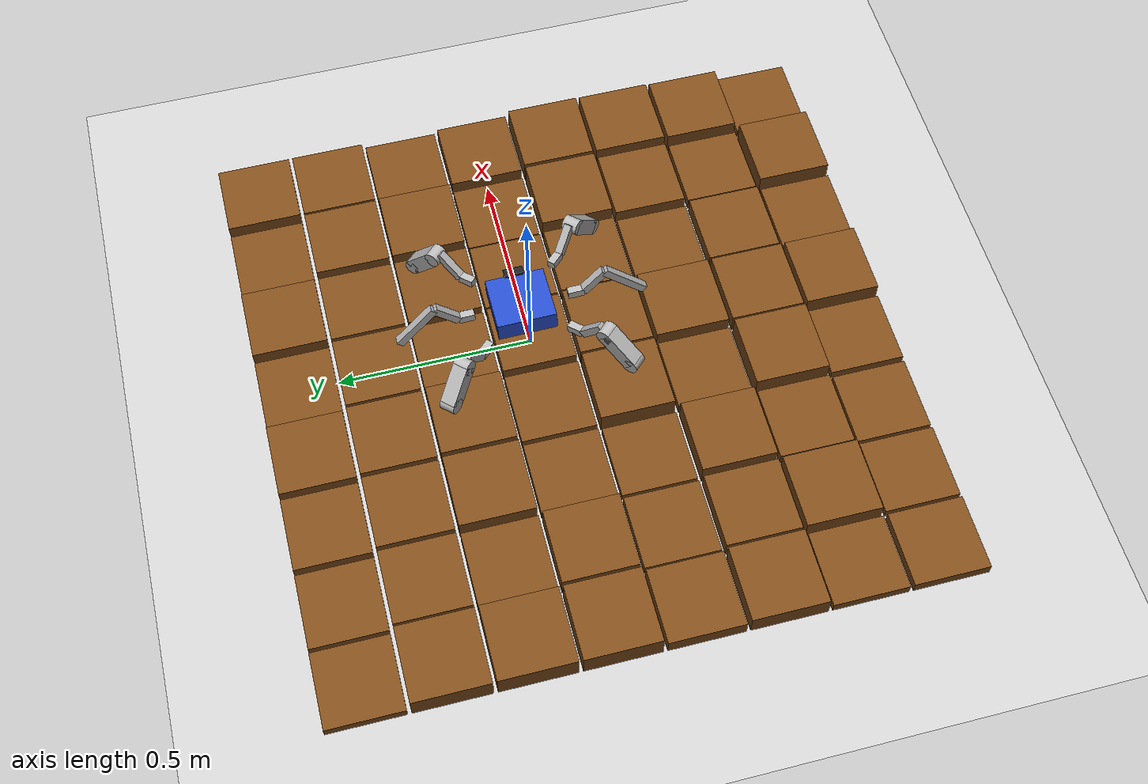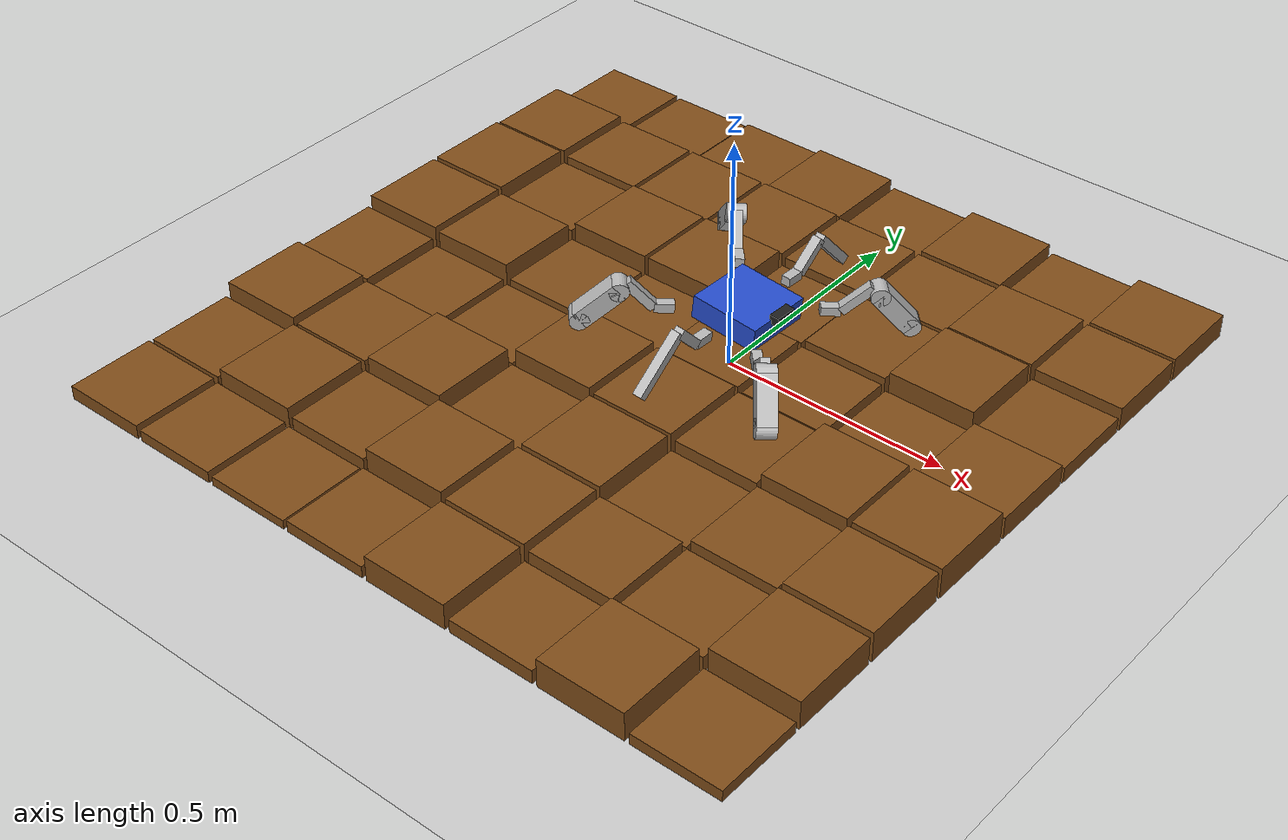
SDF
<sdf version="1.7">
 <world name="default">
  <light name="sun" type="directional">
   <pose>0 0 10 0 -0 0</pose>
   <diffuse>0.8 0.8 0.8 1</diffuse>
   <specular>0.2 0.2 0.2 1</specular>
   <attenuation>
    <range>1000</range>
    <constant>0.9</constant>
    <linear>0.01</linear>
    <quadratic>0.001</quadratic>
   </attenuation>
   <direction>-0.5 0.1 -0.9</direction>
   <spot><inner_angle>0</inner_angle><outer_angle>0</outer_angle><falloff>0</falloff></spot>
  </light>
  <model name="ground_plane">
   <static>1</static>
   <link name="link">
    <collision name="collision">
     <geometry><plane><normal>0 0 1</normal><size>100 100</size></plane></geometry>
     <surface>
      <contact><collide_bitmask>65535</collide_bitmask></contact>
      <friction><ode><mu>100</mu><mu2>50</mu2></ode></friction>
     </surface>
    </collision>
    <visual name="visual">
     <cast_shadows>0</cast_shadows>
     <geometry><plane><normal>0 0 1</normal><size>100 100</size></plane></geometry>
     <material>
      <script><uri>file://media/materials/scripts/gazebo.material</uri><name>Gazebo/Grey</name></script>
     </material>
    </visual>
   </link>
  </model>
  <gravity>0 0 -9.8</gravity>
  <magnetic_field>6e-06 2.3e-05 -4.2e-05</magnetic_field>
  <atmosphere type="adiabatic"/>
  <physics type="ode">
   <max_step_size>0.001</max_step_size>
   <real_time_factor>1</real_time_factor>
   <real_time_update_rate>1000</real_time_update_rate>
  </physics>
  <scene><ambient>0.4 0.4 0.4 1</ambient><background>0.7 0.7 0.7 1</background><shadows>1</shadows></scene>
  <audio><device>default</device></audio>
  <spherical_coordinates>
   <surface_model>EARTH_WGS84</surface_model>
   <latitude_deg>0</latitude_deg>
   <longitude_deg>0</longitude_deg>
   <elevation>0</elevation>
   <heading_deg>0</heading_deg>
  </spherical_coordinates>
  <model name="spider_bot">
   <link name="base_link">
    <inertial>
     <mass>1</mass>
     <inertia><ixx>0.02</ixx><ixy>0</ixy><ixz>0</ixz><iyy>0.02</iyy><iyz>0</iyz><izz>0.04</izz></inertia>
    </inertial>
    <collision name="base_link_collision">
     <geometry><box><size>0.15 0.15 0.05</size></box></geometry>
     <surface><friction><ode><mu>0.2</mu><mu2>0.2</mu2></ode></friction></surface>
    </collision>
    <visual name="base_link_visual">
     <geometry><box><size>0.15 0.15 0.05</size></box></geometry>
     <material>
      <script><name>Gazebo/Blue</name><uri>file://media/materials/scripts/gazebo.material</uri></script>
     </material>
    </visual>
    <visual name="base_link_fixed_joint_lump__camera_link_visual_1">
     <pose>0.08 0 0.025 0 -0 0</pose>
     <geometry><box><size>0.02 0.05 0.02</size></box></geometry>
     <material>
      <script><name>Gazebo/Black</name><uri>file://media/materials/scripts/gazebo.material</uri></script>
     </material>
    </visual>
    <sensor name="depth_camera" type="depth">
     <update_rate>30</update_rate>
     <camera name="head">
      <horizontal_fov>1.39626</horizontal_fov>
      <image><width>640</width><height>480</height><format>R8G8B8</format></image>
      <clip><near>0.05</near><far>3</far></clip>
     </camera>
     <plugin name="camera_controller" filename="libgazebo_ros_camera.so">
      <ros>
       <namespace>/</namespace>
       <remapping>custom_camera/image_raw:=camera/image_raw</remapping>
       <remapping>custom_camera/depth/image_raw:=camera/depth/image_raw</remapping>
      </ros>
      <camera_name>camera</camera_name>
      <frame_name>camera_link</frame_name>
     </plugin>
     <pose>0.08 0 0.025 0 -0 0</pose>
    </sensor>
   </link>
   <joint name="joint1" type="revolute">
    <pose relative_to="base_link">0.1 0.1 0 0 -0 0.785</pose>
    <parent>base_link</parent>
    <child>l1_c</child>
    <axis>
     <xyz>0 0 1</xyz>
     <limit><lower>-1.57</lower><upper>1.57</upper><effort>10</effort><velocity>1</velocity></limit>
     <dynamics>
      <damping>1.5</damping>
      <friction>0.1</friction>
      <spring_reference>0</spring_reference>
      <spring_stiffness>0</spring_stiffness>
     </dynamics>
    </axis>
   </joint>
   <link name="l1_c">
    <pose relative_to="joint1">0 0 0 0 -0 0</pose>
    <inertial>
     <mass>0.1</mass>
     <inertia><ixx>0.01</ixx><ixy>0</ixy><ixz>0</ixz><iyy>0.01</iyy><iyz>0</iyz><izz>0.01</izz></inertia>
    </inertial>
    <collision name="l1_c_collision">
     <pose>0.02 0 0 0 -0 0</pose>
     <geometry><box><size>0.04 0.02 0.02</size></box></geometry>
    </collision>
    <visual name="l1_c_visual">
     <pose>0.02 0 0 0 -0 0</pose>
     <geometry><box><size>0.04 0.02 0.02</size></box></geometry>
    </visual>
   </link>
   <joint name="joint2" type="revolute">
    <pose relative_to="l1_c">0.04 0 0 0 -0.785 0</pose>
    <parent>l1_c</parent>
    <child>l1_f</child>
    <axis>
     <xyz>0 -1 0</xyz>
     <limit><lower>-3.14</lower><upper>3.14</upper><effort>10</effort><velocity>1</velocity></limit>
     <dynamics>
      <damping>1.5</damping>
      <friction>0.1</friction>
      <spring_reference>0</spring_reference>
      <spring_stiffness>0</spring_stiffness>
     </dynamics>
    </axis>
   </joint>
   <link name="l1_f">
    <pose relative_to="joint2">0 0 0 0 -0 0</pose>
    <inertial>
     <mass>0.1</mass>
     <inertia><ixx>0.01</ixx><ixy>0</ixy><ixz>0</ixz><iyy>0.01</iyy><iyz>0</iyz><izz>0.01</izz></inertia>
    </inertial>
    <collision name="l1_f_collision">
     <pose>0.04 0 0 0 -0 0</pose>
     <geometry><box><size>0.08 0.02 0.02</size></box></geometry>
    </collision>
    <visual name="l1_f_visual">
     <pose>0.04 0 0 0 -0 0</pose>
     <geometry><box><size>0.08 0.02 0.02</size></box></geometry>
    </visual>
   </link>
   <joint name="joint3" type="revolute">
    <pose relative_to="l1_f">0.08 0 0 0 1.57 0</pose>
    <parent>l1_f</parent>
    <child>l1_t</child>
    <axis>
     <xyz>0 -1 0</xyz>
     <limit><lower>-3.14</lower><upper>3.14</upper><effort>10</effort><velocity>1</velocity></limit>
     <dynamics>
      <damping>1.5</damping>
      <friction>0.1</friction>
      <spring_reference>0</spring_reference>
      <spring_stiffness>0</spring_stiffness>
     </dynamics>
    </axis>
   </joint>
   <link name="l1_t">
    <pose relative_to="joint3">0 0 0 0 -0 0</pose>
    <inertial>
     <mass>0.2</mass>
     <inertia><ixx>0.001</ixx><ixy>0</ixy><ixz>0</ixz><iyy>0.001</iyy><iyz>0</iyz><izz>0.001</izz></inertia>
    </inertial>
    <collision name="l1_t_collision">
     <pose>0.07 0 0 0 -0 0</pose>
     <geometry><box><size>0.14 0.04 0.04</size></box></geometry>
     <surface>
      <contact><ode><kp>10000</kp><kd>10</kd></ode></contact>
      <friction><ode><mu>2</mu><mu2>2</mu2></ode></friction>
     </surface>
    </collision>
    <visual name="l1_t_visual">
     <pose>0.07 0 0 0 -0 0</pose>
     <geometry><box><size>0.1 0.04 0.04</size></box></geometry>
    </visual>
    <visual name="l1_t_visual_1">
     <pose>0.02 0 0 1.5708 -0 0</pose>
     <geometry><cylinder><length>0.04</length><radius>0.02</radius></cylinder></geometry>
    </visual>
    <visual name="l1_t_visual_2">
     <pose>0.12 0 0 1.5708 -0 0</pose>
     <geometry><cylinder><length>0.04</length><radius>0.02</radius></cylinder></geometry>
    </visual>
   </link>
   <joint name="joint10" type="revolute">
    <pose relative_to="base_link">-0.1 -0.1 0 0 0 -2.355</pose>
    <parent>base_link</parent>
    <child>l4_c</child>
    <axis>
     <xyz>0 0 1</xyz>
     <limit><lower>-1.57</lower><upper>1.57</upper><effort>10</effort><velocity>1</velocity></limit>
     <dynamics>
      <damping>1.5</damping>
      <friction>0.1</friction>
      <spring_reference>0</spring_reference>
      <spring_stiffness>0</spring_stiffness>
     </dynamics>
    </axis>
   </joint>
   <link name="l4_c">
    <pose relative_to="joint10">0 0 0 0 -0 0</pose>
    <inertial>
     <mass>0.1</mass>
     <inertia><ixx>0.01</ixx><ixy>0</ixy><ixz>0</ixz><iyy>0.01</iyy><iyz>0</iyz><izz>0.01</izz></inertia>
    </inertial>
    <collision name="l4_c_collision">
     <pose>0.02 0 0 0 -0 0</pose>
     <geometry><box><size>0.04 0.02 0.02</size></box></geometry>
    </collision>
    <visual name="l4_c_visual">
     <pose>0.02 0 0 0 -0 0</pose>
     <geometry><box><size>0.04 0.02 0.02</size></box></geometry>
    </visual>
   </link>
   <joint name="joint11" type="revolute">
    <pose relative_to="l4_c">0.04 0 0 0 -0.785 0</pose>
    <parent>l4_c</parent>
    <child>l4_f</child>
    <axis>
     <xyz>0 -1 0</xyz>
     <limit><lower>-3.14</lower><upper>3.14</upper><effort>10</effort><velocity>1</velocity></limit>
     <dynamics>
      <damping>1.5</damping>
      <friction>0.1</friction>
      <spring_reference>0</spring_reference>
      <spring_stiffness>0</spring_stiffness>
     </dynamics>
    </axis>
   </joint>
   <link name="l4_f">
    <pose relative_to="joint11">0 0 0 0 -0 0</pose>
    <inertial>
     <mass>0.1</mass>
     <inertia><ixx>0.01</ixx><ixy>0</ixy><ixz>0</ixz><iyy>0.01</iyy><iyz>0</iyz><izz>0.01</izz></inertia>
    </inertial>
    <collision name="l4_f_collision">
     <pose>0.04 0 0 0 -0 0</pose>
     <geometry><box><size>0.08 0.02 0.02</size></box></geometry>
    </collision>
    <visual name="l4_f_visual">
     <pose>0.04 0 0 0 -0 0</pose>
     <geometry><box><size>0.08 0.02 0.02</size></box></geometry>
    </visual>
   </link>
   <joint name="joint12" type="revolute">
    <pose relative_to="l4_f">0.08 0 0 0 1.57 0</pose>
    <parent>l4_f</parent>
    <child>l4_t</child>
    <axis>
     <xyz>0 -1 0</xyz>
     <limit><lower>-3.14</lower><upper>3.14</upper><effort>10</effort><velocity>1</velocity></limit>
     <dynamics>
      <damping>1.5</damping>
      <friction>0.1</friction>
      <spring_reference>0</spring_reference>
      <spring_stiffness>0</spring_stiffness>
     </dynamics>
    </axis>
   </joint>
   <link name="l4_t">
    <pose relative_to="joint12">0 0 0 0 -0 0</pose>
    <inertial>
     <mass>0.2</mass>
     <inertia><ixx>0.001</ixx><ixy>0</ixy><ixz>0</ixz><iyy>0.001</iyy><iyz>0</iyz><izz>0.001</izz></inertia>
    </inertial>
    <collision name="l4_t_collision">
     <pose>0.07 0 0 0 -0 0</pose>
     <geometry><box><size>0.14 0.04 0.04</size></box></geometry>
     <surface>
      <contact><ode><kp>10000</kp><kd>10</kd></ode></contact>
      <friction><ode><mu>2</mu><mu2>2</mu2></ode></friction>
     </surface>
    </collision>
    <visual name="l4_t_visual">
     <pose>0.07 0 0 0 -0 0</pose>
     <geometry><box><size>0.1 0.04 0.04</size></box></geometry>
    </visual>
    <visual name="l4_t_visual_1">
     <pose>0.02 0 0 1.5708 -0 0</pose>
     <geometry><cylinder><length>0.04</length><radius>0.02</radius></cylinder></geometry>
    </visual>
    <visual name="l4_t_visual_2">
     <pose>0.12 0 0 1.5708 -0 0</pose>
     <geometry><cylinder><length>0.04</length><radius>0.02</radius></cylinder></geometry>
    </visual>
   </link>
   <joint name="joint13" type="revolute">
    <pose relative_to="base_link">0 -0.12 0 0 0 -1.57</pose>
    <parent>base_link</parent>
    <child>l5_c</child>
    <axis>
     <xyz>0 0 1</xyz>
     <limit><lower>-1.57</lower><upper>1.57</upper><effort>10</effort><velocity>1</velocity></limit>
     <dynamics>
      <damping>1.5</damping>
      <friction>0.1</friction>
      <spring_reference>0</spring_reference>
      <spring_stiffness>0</spring_stiffness>
     </dynamics>
    </axis>
   </joint>
   <link name="l5_c">
    <pose relative_to="joint13">0 0 0 0 -0 0</pose>
    <inertial>
     <mass>0.1</mass>
     <inertia><ixx>0.01</ixx><ixy>0</ixy><ixz>0</ixz><iyy>0.01</iyy><iyz>0</iyz><izz>0.01</izz></inertia>
    </inertial>
    <collision name="l5_c_collision">
     <pose>0.02 0 0 0 -0 0</pose>
     <geometry><box><size>0.04 0.02 0.02</size></box></geometry>
    </collision>
    <visual name="l5_c_visual">
     <pose>0.02 0 0 0 -0 0</pose>
     <geometry><box><size>0.04 0.02 0.02</size></box></geometry>
    </visual>
   </link>
   <joint name="joint14" type="revolute">
    <pose relative_to="l5_c">0.04 0 0 0 -0.785 0</pose>
    <parent>l5_c</parent>
    <child>l5_f</child>
    <axis>
     <xyz>0 -1 0</xyz>
     <limit><lower>-3.14</lower><upper>3.14</upper><effort>10</effort><velocity>1</velocity></limit>
     <dynamics>
      <damping>1.5</damping>
      <friction>0.1</friction>
      <spring_reference>0</spring_reference>
      <spring_stiffness>0</spring_stiffness>
     </dynamics>
    </axis>
   </joint>
   <link name="l5_f">
    <pose relative_to="joint14">0 0 0 0 -0 0</pose>
    <inertial>
     <mass>0.1</mass>
     <inertia><ixx>0.01</ixx><ixy>0</ixy><ixz>0</ixz><iyy>0.01</iyy><iyz>0</iyz><izz>0.01</izz></inertia>
    </inertial>
    <collision name="l5_f_collision">
     <pose>0.04 0 0 0 -0 0</pose>
     <geometry><box><size>0.08 0.02 0.02</size></box></geometry>
    </collision>
    <visual name="l5_f_visual">
     <pose>0.04 0 0 0 -0 0</pose>
     <geometry><box><size>0.08 0.02 0.02</size></box></geometry>
    </visual>
   </link>
   <joint name="joint15" type="revolute">
    <pose relative_to="l5_f">0.08 0 0 0 1.57 0</pose>
    <parent>l5_f</parent>
    <child>l5_t</child>
    <axis>
     <xyz>0 -1 0</xyz>
     <limit><lower>-3.14</lower><upper>3.14</upper><effort>10</effort><velocity>1</velocity></limit>
     <dynamics>
      <damping>1.5</damping>
      <friction>0.1</friction>
      <spring_reference>0</spring_reference>
      <spring_stiffness>0</spring_stiffness>
     </dynamics>
    </axis>
   </joint>
   <link name="l5_t">
    <pose relative_to="joint15">0 0 0 0 -0 0</pose>
    <inertial>
     <mass>0.1</mass>
     <inertia><ixx>0.01</ixx><ixy>0</ixy><ixz>0</ixz><iyy>0.01</iyy><iyz>0</iyz><izz>0.01</izz></inertia>
    </inertial>
    <collision name="l5_t_collision">
     <pose>0.07 0 0 0 -0 0</pose>
     <geometry><box><size>0.14 0.02 0.02</size></box></geometry>
     <surface>
      <contact><ode><kp>10000</kp><kd>10</kd></ode></contact>
      <friction><ode><mu>2</mu><mu2>2</mu2></ode></friction>
     </surface>
    </collision>
    <visual name="l5_t_visual">
     <pose>0.07 0 0 0 -0 0</pose>
     <geometry><box><size>0.14 0.02 0.02</size></box></geometry>
    </visual>
   </link>
   <joint name="joint16" type="revolute">
    <pose relative_to="base_link">0.1 -0.1 0 0 0 -0.785</pose>
    <parent>base_link</parent>
    <child>l6_c</child>
    <axis>
     <xyz>0 0 1</xyz>
     <limit><lower>-1.57</lower><upper>1.57</upper><effort>10</effort><velocity>1</velocity></limit>
     <dynamics>
      <damping>1.5</damping>
      <friction>0.1</friction>
      <spring_reference>0</spring_reference>
      <spring_stiffness>0</spring_stiffness>
     </dynamics>
    </axis>
   </joint>
   <link name="l6_c">
    <pose relative_to="joint16">0 0 0 0 -0 0</pose>
    <inertial>
     <mass>0.1</mass>
     <inertia><ixx>0.01</ixx><ixy>0</ixy><ixz>0</ixz><iyy>0.01</iyy><iyz>0</iyz><izz>0.01</izz></inertia>
    </inertial>
    <collision name="l6_c_collision">
     <pose>0.02 0 0 0 -0 0</pose>
     <geometry><box><size>0.04 0.02 0.02</size></box></geometry>
    </collision>
    <visual name="l6_c_visual">
     <pose>0.02 0 0 0 -0 0</pose>
     <geometry><box><size>0.04 0.02 0.02</size></box></geometry>
    </visual>
   </link>
   <joint name="joint17" type="revolute">
    <pose relative_to="l6_c">0.04 0 0 0 -0.785 0</pose>
    <parent>l6_c</parent>
    <child>l6_f</child>
    <axis>
     <xyz>0 -1 0</xyz>
     <limit><lower>-3.14</lower><upper>3.14</upper><effort>10</effort><velocity>1</velocity></limit>
     <dynamics>
      <damping>1.5</damping>
      <friction>0.1</friction>
      <spring_reference>0</spring_reference>
      <spring_stiffness>0</spring_stiffness>
     </dynamics>
    </axis>
   </joint>
   <link name="l6_f">
    <pose relative_to="joint17">0 0 0 0 -0 0</pose>
    <inertial>
     <mass>0.1</mass>
     <inertia><ixx>0.01</ixx><ixy>0</ixy><ixz>0</ixz><iyy>0.01</iyy><iyz>0</iyz><izz>0.01</izz></inertia>
    </inertial>
    <collision name="l6_f_collision">
     <pose>0.04 0 0 0 -0 0</pose>
     <geometry><box><size>0.08 0.02 0.02</size></box></geometry>
    </collision>
    <visual name="l6_f_visual">
     <pose>0.04 0 0 0 -0 0</pose>
     <geometry><box><size>0.08 0.02 0.02</size></box></geometry>
    </visual>
   </link>
   <joint name="joint18" type="revolute">
    <pose relative_to="l6_f">0.08 0 0 0 1.57 0</pose>
    <parent>l6_f</parent>
    <child>l6_t</child>
    <axis>
     <xyz>0 -1 0</xyz>
     <limit><lower>-3.14</lower><upper>3.14</upper><effort>10</effort><velocity>1</velocity></limit>
     <dynamics>
      <damping>1.5</damping>
      <friction>0.1</friction>
      <spring_reference>0</spring_reference>
      <spring_stiffness>0</spring_stiffness>
     </dynamics>
    </axis>
   </joint>
   <link name="l6_t">
    <pose relative_to="joint18">0 0 0 0 -0 0</pose>
    <inertial>
     <mass>0.2</mass>
     <inertia><ixx>0.001</ixx><ixy>0</ixy><ixz>0</ixz><iyy>0.001</iyy><iyz>0</iyz><izz>0.001</izz></inertia>
    </inertial>
    <collision name="l6_t_collision">
     <pose>0.07 0 0 0 -0 0</pose>
     <geometry><box><size>0.14 0.04 0.04</size></box></geometry>
     <surface>
      <contact><ode><kp>10000</kp><kd>10</kd></ode></contact>
      <friction><ode><mu>2</mu><mu2>2</mu2></ode></friction>
     </surface>
    </collision>
    <visual name="l6_t_visual">
     <pose>0.07 0 0 0 -0 0</pose>
     <geometry><box><size>0.1 0.04 0.04</size></box></geometry>
    </visual>
    <visual name="l6_t_visual_1">
     <pose>0.02 0 0 1.5708 -0 0</pose>
     <geometry><cylinder><length>0.04</length><radius>0.02</radius></cylinder></geometry>
    </visual>
    <visual name="l6_t_visual_2">
     <pose>0.12 0 0 1.5708 -0 0</pose>
     <geometry><cylinder><length>0.04</length><radius>0.02</radius></cylinder></geometry>
    </visual>
   </link>
   <joint name="joint4" type="revolute">
    <pose relative_to="base_link">0 0.12 0 0 -0 1.57</pose>
    <parent>base_link</parent>
    <child>l2_c</child>
    <axis>
     <xyz>0 0 1</xyz>
     <limit><lower>-1.57</lower><upper>1.57</upper><effort>10</effort><velocity>1</velocity></limit>
     <dynamics>
      <damping>1.5</damping>
      <friction>0.1</friction>
      <spring_reference>0</spring_reference>
      <spring_stiffness>0</spring_stiffness>
     </dynamics>
    </axis>
   </joint>
   <link name="l2_c">
    <pose relative_to="joint4">0 0 0 0 -0 0</pose>
    <inertial>
     <mass>0.1</mass>
     <inertia><ixx>0.01</ixx><ixy>0</ixy><ixz>0</ixz><iyy>0.01</iyy><iyz>0</iyz><izz>0.01</izz></inertia>
    </inertial>
    <collision name="l2_c_collision">
     <pose>0.02 0 0 0 -0 0</pose>
     <geometry><box><size>0.04 0.02 0.02</size></box></geometry>
    </collision>
    <visual name="l2_c_visual">
     <pose>0.02 0 0 0 -0 0</pose>
     <geometry><box><size>0.04 0.02 0.02</size></box></geometry>
    </visual>
   </link>
   <joint name="joint5" type="revolute">
    <pose relative_to="l2_c">0.04 0 0 0 -0.785 0</pose>
    <parent>l2_c</parent>
    <child>l2_f</child>
    <axis>
     <xyz>0 -1 0</xyz>
     <limit><lower>-3.14</lower><upper>3.14</upper><effort>10</effort><velocity>1</velocity></limit>
     <dynamics>
      <damping>1.5</damping>
      <friction>0.1</friction>
      <spring_reference>0</spring_reference>
      <spring_stiffness>0</spring_stiffness>
     </dynamics>
    </axis>
   </joint>
   <link name="l2_f">
    <pose relative_to="joint5">0 0 0 0 -0 0</pose>
    <inertial>
     <mass>0.1</mass>
     <inertia><ixx>0.01</ixx><ixy>0</ixy><ixz>0</ixz><iyy>0.01</iyy><iyz>0</iyz><izz>0.01</izz></inertia>
    </inertial>
    <collision name="l2_f_collision">
     <pose>0.04 0 0 0 -0 0</pose>
     <geometry><box><size>0.08 0.02 0.02</size></box></geometry>
    </collision>
    <visual name="l2_f_visual">
     <pose>0.04 0 0 0 -0 0</pose>
     <geometry><box><size>0.08 0.02 0.02</size></box></geometry>
    </visual>
   </link>
   <joint name="joint6" type="revolute">
    <pose relative_to="l2_f">0.08 0 0 0 1.57 0</pose>
    <parent>l2_f</parent>
    <child>l2_t</child>
    <axis>
     <xyz>0 -1 0</xyz>
     <limit><lower>-3.14</lower><upper>3.14</upper><effort>10</effort><velocity>1</velocity></limit>
     <dynamics>
      <damping>1.5</damping>
      <friction>0.1</friction>
      <spring_reference>0</spring_reference>
      <spring_stiffness>0</spring_stiffness>
     </dynamics>
    </axis>
   </joint>
   <link name="l2_t">
    <pose relative_to="joint6">0 0 0 0 -0 0</pose>
    <inertial>
     <mass>0.1</mass>
     <inertia><ixx>0.01</ixx><ixy>0</ixy><ixz>0</ixz><iyy>0.01</iyy><iyz>0</iyz><izz>0.01</izz></inertia>
    </inertial>
    <collision name="l2_t_collision">
     <pose>0.07 0 0 0 -0 0</pose>
     <geometry><box><size>0.14 0.02 0.02</size></box></geometry>
     <surface>
      <contact><ode><kp>10000</kp><kd>10</kd></ode></contact>
      <friction><ode><mu>2</mu><mu2>2</mu2></ode></friction>
     </surface>
    </collision>
    <visual name="l2_t_visual">
     <pose>0.07 0 0 0 -0 0</pose>
     <geometry><box><size>0.14 0.02 0.02</size></box></geometry>
    </visual>
   </link>
   <joint name="joint7" type="revolute">
    <pose relative_to="base_link">-0.1 0.1 0 0 -0 2.355</pose>
    <parent>base_link</parent>
    <child>l3_c</child>
    <axis>
     <xyz>0 0 1</xyz>
     <limit><lower>-1.57</lower><upper>1.57</upper><effort>10</effort><velocity>1</velocity></limit>
     <dynamics>
      <damping>1.5</damping>
      <friction>0.1</friction>
      <spring_reference>0</spring_reference>
      <spring_stiffness>0</spring_stiffness>
     </dynamics>
    </axis>
   </joint>
   <link name="l3_c">
    <pose relative_to="joint7">0 0 0 0 -0 0</pose>
    <inertial>
     <mass>0.1</mass>
     <inertia><ixx>0.01</ixx><ixy>0</ixy><ixz>0</ixz><iyy>0.01</iyy><iyz>0</iyz><izz>0.01</izz></inertia>
    </inertial>
    <collision name="l3_c_collision">
     <pose>0.02 0 0 0 -0 0</pose>
     <geometry><box><size>0.04 0.02 0.02</size></box></geometry>
    </collision>
    <visual name="l3_c_visual">
     <pose>0.02 0 0 0 -0 0</pose>
     <geometry><box><size>0.04 0.02 0.02</size></box></geometry>
    </visual>
   </link>
   <joint name="joint8" type="revolute">
    <pose relative_to="l3_c">0.04 0 0 0 -0.785 0</pose>
    <parent>l3_c</parent>
    <child>l3_f</child>
    <axis>
     <xyz>0 -1 0</xyz>
     <limit><lower>-3.14</lower><upper>3.14</upper><effort>10</effort><velocity>1</velocity></limit>
     <dynamics>
      <damping>1.5</damping>
      <friction>0.1</friction>
      <spring_reference>0</spring_reference>
      <spring_stiffness>0</spring_stiffness>
     </dynamics>
    </axis>
   </joint>
   <link name="l3_f">
    <pose relative_to="joint8">0 0 0 0 -0 0</pose>
    <inertial>
     <mass>0.1</mass>
     <inertia><ixx>0.01</ixx><ixy>0</ixy><ixz>0</ixz><iyy>0.01</iyy><iyz>0</iyz><izz>0.01</izz></inertia>
    </inertial>
    <collision name="l3_f_collision">
     <pose>0.04 0 0 0 -0 0</pose>
     <geometry><box><size>0.08 0.02 0.02</size></box></geometry>
    </collision>
    <visual name="l3_f_visual">
     <pose>0.04 0 0 0 -0 0</pose>
     <geometry><box><size>0.08 0.02 0.02</size></box></geometry>
    </visual>
   </link>
   <joint name="joint9" type="revolute">
    <pose relative_to="l3_f">0.08 0 0 0 1.57 0</pose>
    <parent>l3_f</parent>
    <child>l3_t</child>
    <axis>
     <xyz>0 -1 0</xyz>
     <limit><lower>-3.14</lower><upper>3.14</upper><effort>10</effort><velocity>1</velocity></limit>
     <dynamics>
      <damping>1.5</damping>
      <friction>0.1</friction>
      <spring_reference>0</spring_reference>
      <spring_stiffness>0</spring_stiffness>
     </dynamics>
    </axis>
   </joint>
   <link name="l3_t">
    <pose relative_to="joint9">0 0 0 0 -0 0</pose>
    <inertial>
     <mass>0.2</mass>
     <inertia><ixx>0.001</ixx><ixy>0</ixy><ixz>0</ixz><iyy>0.001</iyy><iyz>0</iyz><izz>0.001</izz></inertia>
    </inertial>
    <collision name="l3_t_collision">
     <pose>0.07 0 0 0 -0 0</pose>
     <geometry><box><size>0.14 0.04 0.04</size></box></geometry>
     <surface>
      <contact><ode><kp>10000</kp><kd>10</kd></ode></contact>
      <friction><ode><mu>2</mu><mu2>2</mu2></ode></friction>
     </surface>
    </collision>
    <visual name="l3_t_visual">
     <pose>0.07 0 0 0 -0 0</pose>
     <geometry><box><size>0.1 0.04 0.04</size></box></geometry>
    </visual>
    <visual name="l3_t_visual_1">
     <pose>0.02 0 0 1.5708 -0 0</pose>
     <geometry><cylinder><length>0.04</length><radius>0.02</radius></cylinder></geometry>
    </visual>
    <visual name="l3_t_visual_2">
     <pose>0.12 0 0 1.5708 -0 0</pose>
     <geometry><cylinder><length>0.04</length><radius>0.02</radius></cylinder></geometry>
    </visual>
   </link>
   <static>0</static>
   <plugin name="gazebo_ros2_control" filename="libgazebo_ros2_control.so">
    <parameters>/home/chia/spider_ws/install/spider_bot/share/spider_bot/config/spider_bot_controllers.yaml</parameters>
   </plugin>
   <plugin name="gazebo_ros_p3d" filename="libgazebo_ros_p3d.so">
    <ros><namespace>/</namespace><remapping>odom:=odom</remapping></ros>
    <body_name>base_link</body_name>
    <frame_name>world</frame_name>
    <update_rate>50</update_rate>
   </plugin>
   <pose>0.028439 0.016132 0.138992 -0.030502 0.088918 -0.009445</pose>
  </model>
  <model name="terrain_block_0_0">
   <static>1</static>
   <link name="link">
    <collision name="collision"><geometry><box><size>0.19 0.19 0.030729</size></box></geometry></collision>
    <visual name="visual">
     <geometry><box><size>0.19 0.19 0.030729</size></box></geometry>
     <material><ambient>0.5 0.3 0.1 1</ambient></material>
    </visual>
   </link>
   <pose>-0.8 -0.8 0.015365 0 -0 0</pose>
  </model>
  <model name="terrain_block_0_1">
   <static>1</static>
   <link name="link">
    <collision name="collision"><geometry><box><size>0.19 0.19 0.027995</size></box></geometry></collision>
    <visual name="visual">
     <geometry><box><size>0.19 0.19 0.027995</size></box></geometry>
     <material><ambient>0.5 0.3 0.1 1</ambient></material>
    </visual>
   </link>
   <pose>-0.8 -0.6 0.013998 0 -0 0</pose>
  </model>
  <model name="terrain_block_0_2">
   <static>1</static>
   <link name="link">
    <collision name="collision"><geometry><box><size>0.19 0.19 0.057687</size></box></geometry></collision>
    <visual name="visual">
     <geometry><box><size>0.19 0.19 0.057687</size></box></geometry>
     <material><ambient>0.5 0.3 0.1 1</ambient></material>
    </visual>
   </link>
   <pose>-0.8 -0.4 0.028844 0 -0 0</pose>
  </model>
  <model name="terrain_block_0_3">
   <static>1</static>
   <link name="link">
    <collision name="collision"><geometry><box><size>0.19 0.19 0.043119</size></box></geometry></collision>
    <visual name="visual">
     <geometry><box><size>0.19 0.19 0.043119</size></box></geometry>
     <material><ambient>0.5 0.3 0.1 1</ambient></material>
    </visual>
   </link>
   <pose>-0.8 -0.2 0.021559 0 -0 0</pose>
  </model>
  <model name="terrain_block_0_4">
   <static>1</static>
   <link name="link">
    <collision name="collision"><geometry><box><size>0.19 0.19 0.066355</size></box></geometry></collision>
    <visual name="visual">
     <geometry><box><size>0.19 0.19 0.066355</size></box></geometry>
     <material><ambient>0.5 0.3 0.1 1</ambient></material>
    </visual>
   </link>
   <pose>-0.8 0 0.033177 0 -0 0</pose>
  </model>
  <model name="terrain_block_0_5">
   <static>1</static>
   <link name="link">
    <collision name="collision"><geometry><box><size>0.19 0.19 0.067092</size></box></geometry></collision>
    <visual name="visual">
     <geometry><box><size>0.19 0.19 0.067092</size></box></geometry>
     <material><ambient>0.5 0.3 0.1 1</ambient></material>
    </visual>
   </link>
   <pose>-0.8 0.2 0.033546 0 -0 0</pose>
  </model>
  <model name="terrain_block_0_6">
   <static>1</static>
   <link name="link">
    <collision name="collision"><geometry><box><size>0.19 0.19 0.06284</size></box></geometry></collision>
    <visual name="visual">
     <geometry><box><size>0.19 0.19 0.06284</size></box></geometry>
     <material><ambient>0.5 0.3 0.1 1</ambient></material>
    </visual>
   </link>
   <pose>-0.8 0.4 0.03142 0 -0 0</pose>
  </model>
  <model name="terrain_block_0_7">
   <static>1</static>
   <link name="link">
    <collision name="collision"><geometry><box><size>0.19 0.19 0.025576</size></box></geometry></collision>
    <visual name="visual">
     <geometry><box><size>0.19 0.19 0.025576</size></box></geometry>
     <material><ambient>0.5 0.3 0.1 1</ambient></material>
    </visual>
   </link>
   <pose>-0.8 0.6 0.012788 0 -0 0</pose>
  </model>
  <model name="terrain_block_1_0">
   <static>1</static>
   <link name="link">
    <collision name="collision"><geometry><box><size>0.19 0.19 0.025223</size></box></geometry></collision>
    <visual name="visual">
     <geometry><box><size>0.19 0.19 0.025223</size></box></geometry>
     <material><ambient>0.5 0.3 0.1 1</ambient></material>
    </visual>
   </link>
   <pose>-0.6 -0.8 0.012611 0 -0 0</pose>
  </model>
  <model name="terrain_block_1_1">
   <static>1</static>
   <link name="link">
    <collision name="collision"><geometry><box><size>0.19 0.19 0.052018</size></box></geometry></collision>
    <visual name="visual">
     <geometry><box><size>0.19 0.19 0.052018</size></box></geometry>
     <material><ambient>0.5 0.3 0.1 1</ambient></material>
    </visual>
   </link>
   <pose>-0.6 -0.6 0.026009 0 -0 0</pose>
  </model>
  <model name="terrain_block_1_2">
   <static>1</static>
   <link name="link">
    <collision name="collision"><geometry><box><size>0.19 0.19 0.047937</size></box></geometry></collision>
    <visual name="visual">
     <geometry><box><size>0.19 0.19 0.047937</size></box></geometry>
     <material><ambient>0.5 0.3 0.1 1</ambient></material>
    </visual>
   </link>
   <pose>-0.6 -0.4 0.023969 0 -0 0</pose>
  </model>
  <model name="terrain_block_1_3">
   <static>1</static>
   <link name="link">
    <collision name="collision"><geometry><box><size>0.19 0.19 0.029502</size></box></geometry></collision>
    <visual name="visual">
     <geometry><box><size>0.19 0.19 0.029502</size></box></geometry>
     <material><ambient>0.5 0.3 0.1 1</ambient></material>
    </visual>
   </link>
   <pose>-0.6 -0.2 0.014751 0 -0 0</pose>
  </model>
  <model name="terrain_block_1_4">
   <static>1</static>
   <link name="link">
    <collision name="collision"><geometry><box><size>0.19 0.19 0.05982</size></box></geometry></collision>
    <visual name="visual">
     <geometry><box><size>0.19 0.19 0.05982</size></box></geometry>
     <material><ambient>0.5 0.3 0.1 1</ambient></material>
    </visual>
   </link>
   <pose>-0.6 0 0.02991 0 -0 0</pose>
  </model>
  <model name="terrain_block_1_5">
   <static>1</static>
   <link name="link">
    <collision name="collision"><geometry><box><size>0.19 0.19 0.041989</size></box></geometry></collision>
    <visual name="visual">
     <geometry><box><size>0.19 0.19 0.041989</size></box></geometry>
     <material><ambient>0.5 0.3 0.1 1</ambient></material>
    </visual>
   </link>
   <pose>-0.6 0.2 0.020995 0 -0 0</pose>
  </model>
  <model name="terrain_block_1_6">
   <static>1</static>
   <link name="link">
    <collision name="collision"><geometry><box><size>0.19 0.19 0.052518</size></box></geometry></collision>
    <visual name="visual">
     <geometry><box><size>0.19 0.19 0.052518</size></box></geometry>
     <material><ambient>0.5 0.3 0.1 1</ambient></material>
    </visual>
   </link>
   <pose>-0.6 0.4 0.026259 0 -0 0</pose>
  </model>
  <model name="terrain_block_1_7">
   <static>1</static>
   <link name="link">
    <collision name="collision"><geometry><box><size>0.19 0.19 0.022545</size></box></geometry></collision>
    <visual name="visual">
     <geometry><box><size>0.19 0.19 0.022545</size></box></geometry>
     <material><ambient>0.5 0.3 0.1 1</ambient></material>
    </visual>
   </link>
   <pose>-0.6 0.6 0.011272 0 -0 0</pose>
  </model>
  <model name="terrain_block_2_0">
   <static>1</static>
   <link name="link">
    <collision name="collision"><geometry><box><size>0.19 0.19 0.020032</size></box></geometry></collision>
    <visual name="visual">
     <geometry><box><size>0.19 0.19 0.020032</size></box></geometry>
     <material><ambient>0.5 0.3 0.1 1</ambient></material>
    </visual>
   </link>
   <pose>-0.4 -0.8 0.010016 0 -0 0</pose>
  </model>
  <model name="terrain_block_2_1">
   <static>1</static>
   <link name="link">
    <collision name="collision"><geometry><box><size>0.19 0.19 0.035666</size></box></geometry></collision>
    <visual name="visual">
     <geometry><box><size>0.19 0.19 0.035666</size></box></geometry>
     <material><ambient>0.5 0.3 0.1 1</ambient></material>
    </visual>
   </link>
   <pose>-0.4 -0.6 0.017833 0 -0 0</pose>
  </model>
  <model name="terrain_block_2_2">
   <static>1</static>
   <link name="link">
    <collision name="collision"><geometry><box><size>0.19 0.19 0.062141</size></box></geometry></collision>
    <visual name="visual">
     <geometry><box><size>0.19 0.19 0.062141</size></box></geometry>
     <material><ambient>0.5 0.3 0.1 1</ambient></material>
    </visual>
   </link>
   <pose>-0.4 -0.4 0.031071 0 -0 0</pose>
  </model>
  <model name="terrain_block_2_3">
   <static>1</static>
   <link name="link">
    <collision name="collision"><geometry><box><size>0.19 0.19 0.022664</size></box></geometry></collision>
    <visual name="visual">
     <geometry><box><size>0.19 0.19 0.022664</size></box></geometry>
     <material><ambient>0.5 0.3 0.1 1</ambient></material>
    </visual>
   </link>
   <pose>-0.4 -0.2 0.011332 0 -0 0</pose>
  </model>
  <model name="terrain_block_2_4">
   <static>1</static>
   <link name="link">
    <collision name="collision"><geometry><box><size>0.19 0.19 0.0294</size></box></geometry></collision>
    <visual name="visual">
     <geometry><box><size>0.19 0.19 0.0294</size></box></geometry>
     <material><ambient>0.5 0.3 0.1 1</ambient></material>
    </visual>
   </link>
   <pose>-0.4 0 0.0147 0 -0 0</pose>
  </model>
  <model name="terrain_block_2_5">
   <static>1</static>
   <link name="link">
    <collision name="collision"><geometry><box><size>0.19 0.19 0.063957</size></box></geometry></collision>
    <visual name="visual">
     <geometry><box><size>0.19 0.19 0.063957</size></box></geometry>
     <material><ambient>0.5 0.3 0.1 1</ambient></material>
    </visual>
   </link>
   <pose>-0.4 0.2 0.031978 0 -0 0</pose>
  </model>
  <model name="terrain_block_2_6">
   <static>1</static>
   <link name="link">
    <collision name="collision"><geometry><box><size>0.19 0.19 0.05213</size></box></geometry></collision>
    <visual name="visual">
     <geometry><box><size>0.19 0.19 0.05213</size></box></geometry>
     <material><ambient>0.5 0.3 0.1 1</ambient></material>
    </visual>
   </link>
   <pose>-0.4 0.4 0.026065 0 -0 0</pose>
  </model>
  <model name="terrain_block_2_7">
   <static>1</static>
   <link name="link">
    <collision name="collision"><geometry><box><size>0.19 0.19 0.030254</size></box></geometry></collision>
    <visual name="visual">
     <geometry><box><size>0.19 0.19 0.030254</size></box></geometry>
     <material><ambient>0.5 0.3 0.1 1</ambient></material>
    </visual>
   </link>
   <pose>-0.4 0.6 0.015127 0 -0 0</pose>
  </model>
  <model name="terrain_block_3_0">
   <static>1</static>
   <link name="link">
    <collision name="collision"><geometry><box><size>0.19 0.19 0.025856</size></box></geometry></collision>
    <visual name="visual">
     <geometry><box><size>0.19 0.19 0.025856</size></box></geometry>
     <material><ambient>0.5 0.3 0.1 1</ambient></material>
    </visual>
   </link>
   <pose>-0.2 -0.8 0.012928 0 -0 0</pose>
  </model>
  <model name="terrain_block_3_1">
   <static>1</static>
   <link name="link">
    <collision name="collision"><geometry><box><size>0.19 0.19 0.064584</size></box></geometry></collision>
    <visual name="visual">
     <geometry><box><size>0.19 0.19 0.064584</size></box></geometry>
     <material><ambient>0.5 0.3 0.1 1</ambient></material>
    </visual>
   </link>
   <pose>-0.2 -0.6 0.032292 0 -0 0</pose>
  </model>
  <model name="terrain_block_3_2">
   <static>1</static>
   <link name="link">
    <collision name="collision"><geometry><box><size>0.19 0.19 0.030738</size></box></geometry></collision>
    <visual name="visual">
     <geometry><box><size>0.19 0.19 0.030738</size></box></geometry>
     <material><ambient>0.5 0.3 0.1 1</ambient></material>
    </visual>
   </link>
   <pose>-0.2 -0.4 0.015369 0 -0 0</pose>
  </model>
  <model name="terrain_block_3_3">
   <static>1</static>
   <link name="link">
    <collision name="collision"><geometry><box><size>0.19 0.19 0.060856</size></box></geometry></collision>
    <visual name="visual">
     <geometry><box><size>0.19 0.19 0.060856</size></box></geometry>
     <material><ambient>0.5 0.3 0.1 1</ambient></material>
    </visual>
   </link>
   <pose>-0.2 -0.2 0.030428 0 -0 0</pose>
  </model>
  <model name="terrain_block_3_4">
   <static>1</static>
   <link name="link">
    <collision name="collision"><geometry><box><size>0.19 0.19 0.02964</size></box></geometry></collision>
    <visual name="visual">
     <geometry><box><size>0.19 0.19 0.02964</size></box></geometry>
     <material><ambient>0.5 0.3 0.1 1</ambient></material>
    </visual>
   </link>
   <pose>-0.2 0 0.01482 0 -0 0</pose>
  </model>
  <model name="terrain_block_3_5">
   <static>1</static>
   <link name="link">
    <collision name="collision"><geometry><box><size>0.19 0.19 0.064661</size></box></geometry></collision>
    <visual name="visual">
     <geometry><box><size>0.19 0.19 0.064661</size></box></geometry>
     <material><ambient>0.5 0.3 0.1 1</ambient></material>
    </visual>
   </link>
   <pose>-0.2 0.2 0.032331 0 -0 0</pose>
  </model>
  <model name="terrain_block_3_6">
   <static>1</static>
   <link name="link">
    <collision name="collision"><geometry><box><size>0.19 0.19 0.052943</size></box></geometry></collision>
    <visual name="visual">
     <geometry><box><size>0.19 0.19 0.052943</size></box></geometry>
     <material><ambient>0.5 0.3 0.1 1</ambient></material>
    </visual>
   </link>
   <pose>-0.2 0.4 0.026472 0 -0 0</pose>
  </model>
  <model name="terrain_block_3_7">
   <static>1</static>
   <link name="link">
    <collision name="collision"><geometry><box><size>0.19 0.19 0.042059</size></box></geometry></collision>
    <visual name="visual">
     <geometry><box><size>0.19 0.19 0.042059</size></box></geometry>
     <material><ambient>0.5 0.3 0.1 1</ambient></material>
    </visual>
   </link>
   <pose>-0.2 0.6 0.02103 0 -0 0</pose>
  </model>
  <model name="terrain_block_4_0">
   <static>1</static>
   <link name="link">
    <collision name="collision"><geometry><box><size>0.19 0.19 0.056214</size></box></geometry></collision>
    <visual name="visual">
     <geometry><box><size>0.19 0.19 0.056214</size></box></geometry>
     <material><ambient>0.5 0.3 0.1 1</ambient></material>
    </visual>
   </link>
   <pose>0 -0.8 0.028107 0 -0 0</pose>
  </model>
  <model name="terrain_block_4_1">
   <static>1</static>
   <link name="link">
    <collision name="collision"><geometry><box><size>0.19 0.19 0.055141</size></box></geometry></collision>
    <visual name="visual">
     <geometry><box><size>0.19 0.19 0.055141</size></box></geometry>
     <material><ambient>0.5 0.3 0.1 1</ambient></material>
    </visual>
   </link>
   <pose>0 -0.6 0.02757 0 -0 0</pose>
  </model>
  <model name="terrain_block_4_2">
   <static>1</static>
   <link name="link">
    <collision name="collision"><geometry><box><size>0.19 0.19 0.055357</size></box></geometry></collision>
    <visual name="visual">
     <geometry><box><size>0.19 0.19 0.055357</size></box></geometry>
     <material><ambient>0.5 0.3 0.1 1</ambient></material>
    </visual>
   </link>
   <pose>0 -0.4 0.027678 0 -0 0</pose>
  </model>
  <model name="terrain_block_4_3">
   <static>1</static>
   <link name="link">
    <collision name="collision"><geometry><box><size>0.19 0.19 0.053225</size></box></geometry></collision>
    <visual name="visual">
     <geometry><box><size>0.19 0.19 0.053225</size></box></geometry>
     <material><ambient>0.5 0.3 0.1 1</ambient></material>
    </visual>
   </link>
   <pose>0 -0.2 0.026613 0 -0 0</pose>
  </model>
  <model name="terrain_block_4_4">
   <static>1</static>
   <link name="link">
    <collision name="collision"><geometry><box><size>0.19 0.19 0.043869</size></box></geometry></collision>
    <visual name="visual">
     <geometry><box><size>0.19 0.19 0.043869</size></box></geometry>
     <material><ambient>0.5 0.3 0.1 1</ambient></material>
    </visual>
   </link>
   <pose>0 0 0.021934 0 -0 0</pose>
  </model>
  <model name="terrain_block_4_5">
   <static>1</static>
   <link name="link">
    <collision name="collision"><geometry><box><size>0.19 0.19 0.033668</size></box></geometry></collision>
    <visual name="visual">
     <geometry><box><size>0.19 0.19 0.033668</size></box></geometry>
     <material><ambient>0.5 0.3 0.1 1</ambient></material>
    </visual>
   </link>
   <pose>0 0.2 0.016834 0 -0 0</pose>
  </model>
  <model name="terrain_block_4_6">
   <static>1</static>
   <link name="link">
    <collision name="collision"><geometry><box><size>0.19 0.19 0.047347</size></box></geometry></collision>
    <visual name="visual">
     <geometry><box><size>0.19 0.19 0.047347</size></box></geometry>
     <material><ambient>0.5 0.3 0.1 1</ambient></material>
    </visual>
   </link>
   <pose>0 0.4 0.023674 0 -0 0</pose>
  </model>
  <model name="terrain_block_4_7">
   <static>1</static>
   <link name="link">
    <collision name="collision"><geometry><box><size>0.19 0.19 0.024173</size></box></geometry></collision>
    <visual name="visual">
     <geometry><box><size>0.19 0.19 0.024173</size></box></geometry>
     <material><ambient>0.5 0.3 0.1 1</ambient></material>
    </visual>
   </link>
   <pose>0 0.6 0.012086 0 -0 0</pose>
  </model>
  <model name="terrain_block_5_0">
   <static>1</static>
   <link name="link">
    <collision name="collision"><geometry><box><size>0.19 0.19 0.029443</size></box></geometry></collision>
    <visual name="visual">
     <geometry><box><size>0.19 0.19 0.029443</size></box></geometry>
     <material><ambient>0.5 0.3 0.1 1</ambient></material>
    </visual>
   </link>
   <pose>0.2 -0.8 0.014721 0 -0 0</pose>
  </model>
  <model name="terrain_block_5_1">
   <static>1</static>
   <link name="link">
    <collision name="collision"><geometry><box><size>0.19 0.19 0.045294</size></box></geometry></collision>
    <visual name="visual">
     <geometry><box><size>0.19 0.19 0.045294</size></box></geometry>
     <material><ambient>0.5 0.3 0.1 1</ambient></material>
    </visual>
   </link>
   <pose>0.2 -0.6 0.022647 0 -0 0</pose>
  </model>
  <model name="terrain_block_5_2">
   <static>1</static>
   <link name="link">
    <collision name="collision"><geometry><box><size>0.19 0.19 0.025688</size></box></geometry></collision>
    <visual name="visual">
     <geometry><box><size>0.19 0.19 0.025688</size></box></geometry>
     <material><ambient>0.5 0.3 0.1 1</ambient></material>
    </visual>
   </link>
   <pose>0.2 -0.4 0.012844 0 -0 0</pose>
  </model>
  <model name="terrain_block_5_3">
   <static>1</static>
   <link name="link">
    <collision name="collision"><geometry><box><size>0.19 0.19 0.04275</size></box></geometry></collision>
    <visual name="visual">
     <geometry><box><size>0.19 0.19 0.04275</size></box></geometry>
     <material><ambient>0.5 0.3 0.1 1</ambient></material>
    </visual>
   </link>
   <pose>0.2 -0.2 0.021375 0 -0 0</pose>
  </model>
  <model name="terrain_block_5_4">
   <static>1</static>
   <link name="link">
    <collision name="collision"><geometry><box><size>0.19 0.19 0.035828</size></box></geometry></collision>
    <visual name="visual">
     <geometry><box><size>0.19 0.19 0.035828</size></box></geometry>
     <material><ambient>0.5 0.3 0.1 1</ambient></material>
    </visual>
   </link>
   <pose>0.2 0 0.017914 0 -0 0</pose>
  </model>
  <model name="terrain_block_5_5">
   <static>1</static>
   <link name="link">
    <collision name="collision"><geometry><box><size>0.19 0.19 0.04485</size></box></geometry></collision>
    <visual name="visual">
     <geometry><box><size>0.19 0.19 0.04485</size></box></geometry>
     <material><ambient>0.5 0.3 0.1 1</ambient></material>
    </visual>
   </link>
   <pose>0.2 0.2 0.022425 0 -0 0</pose>
  </model>
  <model name="terrain_block_5_6">
   <static>1</static>
   <link name="link">
    <collision name="collision"><geometry><box><size>0.19 0.19 0.044194</size></box></geometry></collision>
    <visual name="visual">
     <geometry><box><size>0.19 0.19 0.044194</size></box></geometry>
     <material><ambient>0.5 0.3 0.1 1</ambient></material>
    </visual>
   </link>
   <pose>0.2 0.4 0.022097 0 -0 0</pose>
  </model>
  <model name="terrain_block_5_7">
   <static>1</static>
   <link name="link">
    <collision name="collision"><geometry><box><size>0.19 0.19 0.046383</size></box></geometry></collision>
    <visual name="visual">
     <geometry><box><size>0.19 0.19 0.046383</size></box></geometry>
     <material><ambient>0.5 0.3 0.1 1</ambient></material>
    </visual>
   </link>
   <pose>0.2 0.6 0.023192 0 -0 0</pose>
  </model>
  <model name="terrain_block_6_0">
   <static>1</static>
   <link name="link">
    <collision name="collision"><geometry><box><size>0.19 0.19 0.062726</size></box></geometry></collision>
    <visual name="visual">
     <geometry><box><size>0.19 0.19 0.062726</size></box></geometry>
     <material><ambient>0.5 0.3 0.1 1</ambient></material>
    </visual>
   </link>
   <pose>0.4 -0.8 0.031363 0 -0 0</pose>
  </model>
  <model name="terrain_block_6_1">
   <static>1</static>
   <link name="link">
    <collision name="collision"><geometry><box><size>0.19 0.19 0.034861</size></box></geometry></collision>
    <visual name="visual">
     <geometry><box><size>0.19 0.19 0.034861</size></box></geometry>
     <material><ambient>0.5 0.3 0.1 1</ambient></material>
    </visual>
   </link>
   <pose>0.4 -0.6 0.01743 0 -0 0</pose>
  </model>
  <model name="terrain_block_6_2">
   <static>1</static>
   <link name="link">
    <collision name="collision"><geometry><box><size>0.19 0.19 0.047311</size></box></geometry></collision>
    <visual name="visual">
     <geometry><box><size>0.19 0.19 0.047311</size></box></geometry>
     <material><ambient>0.5 0.3 0.1 1</ambient></material>
    </visual>
   </link>
   <pose>0.4 -0.4 0.023655 0 -0 0</pose>
  </model>
  <model name="terrain_block_6_3">
   <static>1</static>
   <link name="link">
    <collision name="collision"><geometry><box><size>0.19 0.19 0.069465</size></box></geometry></collision>
    <visual name="visual">
     <geometry><box><size>0.19 0.19 0.069465</size></box></geometry>
     <material><ambient>0.5 0.3 0.1 1</ambient></material>
    </visual>
   </link>
   <pose>0.4 -0.2 0.034733 0 -0 0</pose>
  </model>
  <model name="terrain_block_6_4">
   <static>1</static>
   <link name="link">
    <collision name="collision"><geometry><box><size>0.19 0.19 0.025831</size></box></geometry></collision>
    <visual name="visual">
     <geometry><box><size>0.19 0.19 0.025831</size></box></geometry>
     <material><ambient>0.5 0.3 0.1 1</ambient></material>
    </visual>
   </link>
   <pose>0.4 0 0.012916 0 -0 0</pose>
  </model>
  <model name="terrain_block_6_5">
   <static>1</static>
   <link name="link">
    <collision name="collision"><geometry><box><size>0.19 0.19 0.06354</size></box></geometry></collision>
    <visual name="visual">
     <geometry><box><size>0.19 0.19 0.06354</size></box></geometry>
     <material><ambient>0.5 0.3 0.1 1</ambient></material>
    </visual>
   </link>
   <pose>0.4 0.2 0.03177 0 -0 0</pose>
  </model>
  <model name="terrain_block_6_6">
   <static>1</static>
   <link name="link">
    <collision name="collision"><geometry><box><size>0.19 0.19 0.058648</size></box></geometry></collision>
    <visual name="visual">
     <geometry><box><size>0.19 0.19 0.058648</size></box></geometry>
     <material><ambient>0.5 0.3 0.1 1</ambient></material>
    </visual>
   </link>
   <pose>0.4 0.4 0.029324 0 -0 0</pose>
  </model>
  <model name="terrain_block_6_7">
   <static>1</static>
   <link name="link">
    <collision name="collision"><geometry><box><size>0.19 0.19 0.028103</size></box></geometry></collision>
    <visual name="visual">
     <geometry><box><size>0.19 0.19 0.028103</size></box></geometry>
     <material><ambient>0.5 0.3 0.1 1</ambient></material>
    </visual>
   </link>
   <pose>0.4 0.6 0.014052 0 -0 0</pose>
  </model>
  <model name="terrain_block_7_0">
   <static>1</static>
   <link name="link">
    <collision name="collision"><geometry><box><size>0.19 0.19 0.024411</size></box></geometry></collision>
    <visual name="visual">
     <geometry><box><size>0.19 0.19 0.024411</size></box></geometry>
     <material><ambient>0.5 0.3 0.1 1</ambient></material>
    </visual>
   </link>
   <pose>0.6 -0.8 0.012205 0 -0 0</pose>
  </model>
  <model name="terrain_block_7_1">
   <static>1</static>
   <link name="link">
    <collision name="collision"><geometry><box><size>0.19 0.19 0.062386</size></box></geometry></collision>
    <visual name="visual">
     <geometry><box><size>0.19 0.19 0.062386</size></box></geometry>
     <material><ambient>0.5 0.3 0.1 1</ambient></material>
    </visual>
   </link>
   <pose>0.6 -0.6 0.031193 0 -0 0</pose>
  </model>
  <model name="terrain_block_7_2">
   <static>1</static>
   <link name="link">
    <collision name="collision"><geometry><box><size>0.19 0.19 0.065979</size></box></geometry></collision>
    <visual name="visual">
     <geometry><box><size>0.19 0.19 0.065979</size></box></geometry>
     <material><ambient>0.5 0.3 0.1 1</ambient></material>
    </visual>
   </link>
   <pose>0.6 -0.4 0.03299 0 -0 0</pose>
  </model>
  <model name="terrain_block_7_3">
   <static>1</static>
   <link name="link">
    <collision name="collision"><geometry><box><size>0.19 0.19 0.067923</size></box></geometry></collision>
    <visual name="visual">
     <geometry><box><size>0.19 0.19 0.067923</size></box></geometry>
     <material><ambient>0.5 0.3 0.1 1</ambient></material>
    </visual>
   </link>
   <pose>0.6 -0.2 0.033962 0 -0 0</pose>
  </model>
  <model name="terrain_block_7_4">
   <static>1</static>
   <link name="link">
    <collision name="collision"><geometry><box><size>0.19 0.19 0.048782</size></box></geometry></collision>
    <visual name="visual">
     <geometry><box><size>0.19 0.19 0.048782</size></box></geometry>
     <material><ambient>0.5 0.3 0.1 1</ambient></material>
    </visual>
   </link>
   <pose>0.6 0 0.024391 0 -0 0</pose>
  </model>
  <model name="terrain_block_7_5">
   <static>1</static>
   <link name="link">
    <collision name="collision"><geometry><box><size>0.19 0.19 0.034955</size></box></geometry></collision>
    <visual name="visual">
     <geometry><box><size>0.19 0.19 0.034955</size></box></geometry>
     <material><ambient>0.5 0.3 0.1 1</ambient></material>
    </visual>
   </link>
   <pose>0.6 0.2 0.017477 0 -0 0</pose>
  </model>
  <model name="terrain_block_7_6">
   <static>1</static>
   <link name="link">
    <collision name="collision"><geometry><box><size>0.19 0.19 0.052267</size></box></geometry></collision>
    <visual name="visual">
     <geometry><box><size>0.19 0.19 0.052267</size></box></geometry>
     <material><ambient>0.5 0.3 0.1 1</ambient></material>
    </visual>
   </link>
   <pose>0.6 0.4 0.026134 0 -0 0</pose>
  </model>
  <model name="terrain_block_7_7">
   <static>1</static>
   <link name="link">
    <collision name="collision"><geometry><box><size>0.19 0.19 0.051615</size></box></geometry></collision>
    <visual name="visual">
     <geometry><box><size>0.19 0.19 0.051615</size></box></geometry>
     <material><ambient>0.5 0.3 0.1 1</ambient></material>
    </visual>
   </link>
   <pose>0.6 0.6 0.025807 0 -0 0</pose>
  </model>
 </world>
</sdf>
